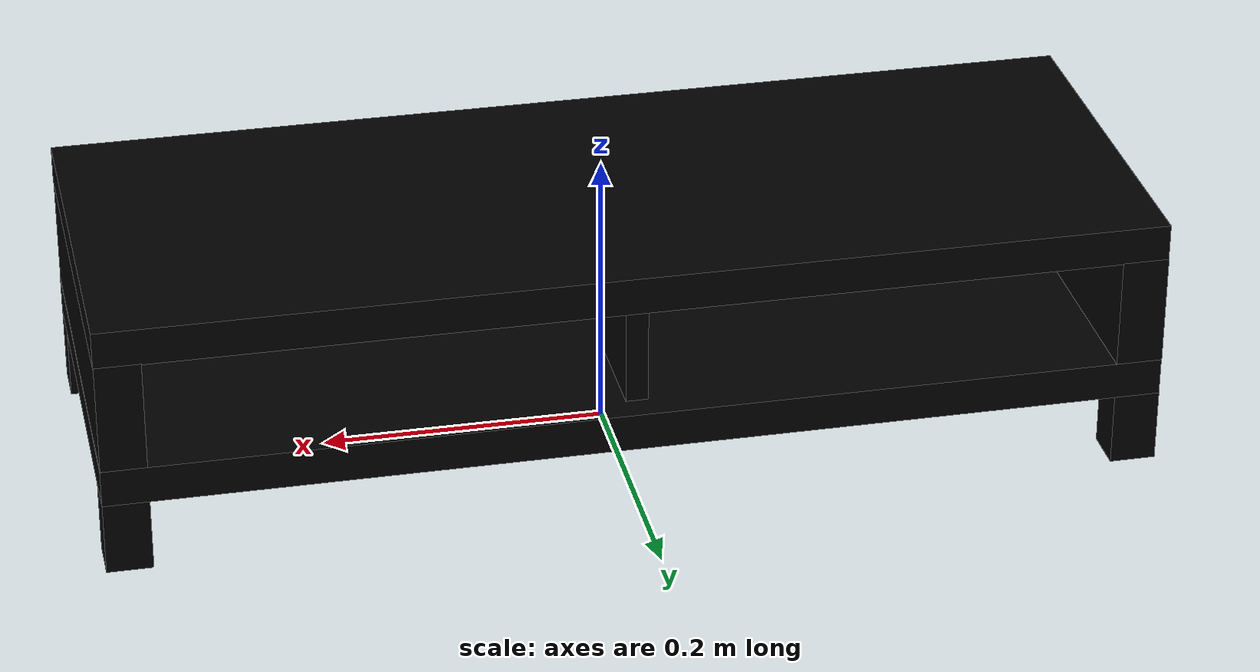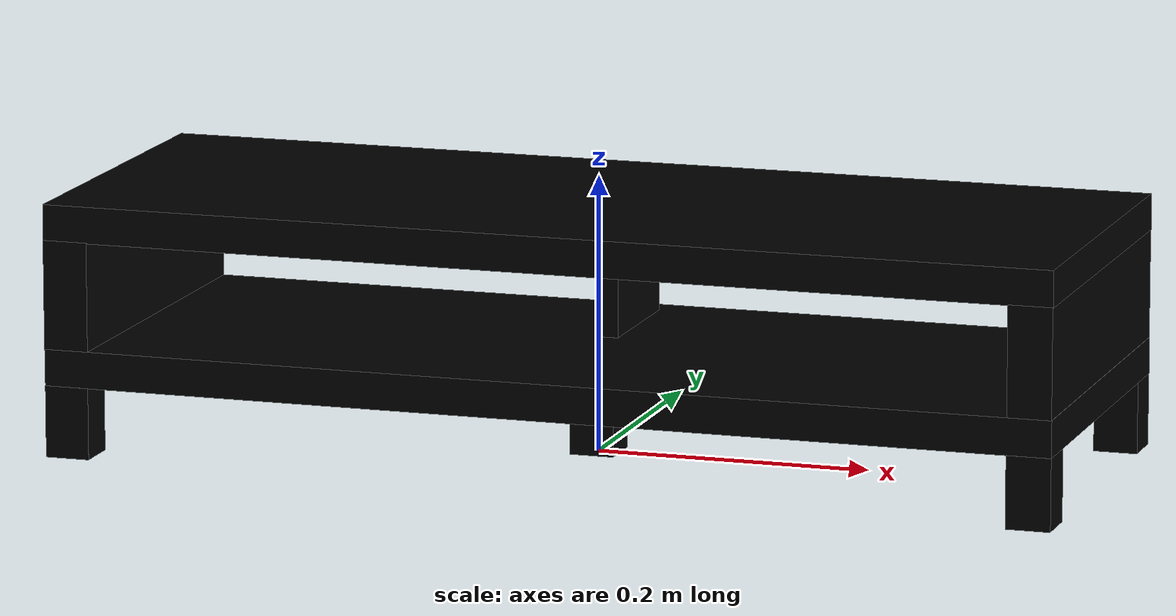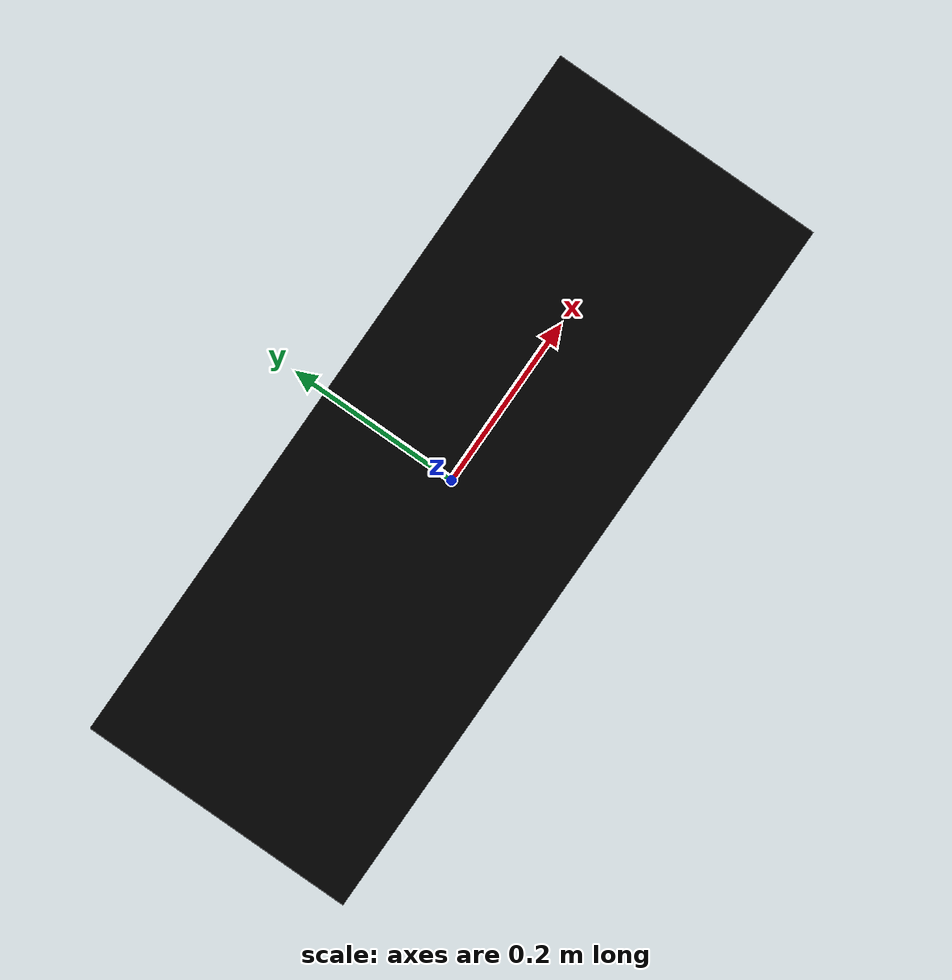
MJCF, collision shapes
<mujoco model="tvunit_lack_0830">
  <custom>
    <numeric data="0.063734 0.203201 0.013249 0 -0 -1 0" name="0_part0_initpos" />
    <numeric data="0.072383 -0.174408 0.013078 0 -1 0 0" name="9_part9_initpos" />
    <numeric data="0.541 0.009119 0.0078 0.706761 0.022102 -0.706761 0.022102" name="8_part8_initpos" />
    <numeric data="0.573934 -0.229309 0.016028 -0.706631 -0.025943 0.706631 -0.025943" name="7_part7_initpos" />
    <numeric data="-0.41802 -0.221782 0.015554 0.035814 -0.706199 0.035814 0.706199" name="6_part6_initpos" />
    <numeric data="-0.387543 0.045523 0.015872 0.70687 -0.70687 -0.018287 0.018287" name="5_part5_initpos" />
    <numeric data="-0.399809 0.305374 0.016183 0.706684 -0.706684 0.024436 -0.024436" name="4_part4_initpos" />
    <numeric data="0.542062 0.292214 0.016183 0.707107 -0.707107 3.4e-05 -3.4e-05" name="3_part3_initpos" />
    <numeric data="-0.391025 0.170627 0.015872 0.707052 -0.707052 -0.008812 0.008812" name="2_part2_initpos" />
    <numeric data="0.536927 0.149925 0.016183 0.706708 -0.706708 -0.023737 0.023737" name="1_part1_initpos" />
  </custom>
  <asset>
    <mesh file="tvunit_lack_0830/0.stl" name="part0" scale="0.0005 0.0005 0.0005" />
    <mesh file="tvunit_lack_0830/9.stl" name="part9" scale="0.0005 0.0005 0.0005" />
    <mesh file="tvunit_lack_0830/8.stl" name="part8" scale="0.0005 0.0005 0.0005" />
    <mesh file="tvunit_lack_0830/7.stl" name="part7" scale="0.0005 0.0005 0.0005" />
    <mesh file="tvunit_lack_0830/6.stl" name="part6" scale="0.0005 0.0005 0.0005" />
    <mesh file="tvunit_lack_0830/5.stl" name="part5" scale="0.0005 0.0005 0.0005" />
    <mesh file="tvunit_lack_0830/4.stl" name="part4" scale="0.0005 0.0005 0.0005" />
    <mesh file="tvunit_lack_0830/3.stl" name="part3" scale="0.0005 0.0005 0.0005" />
    <mesh file="tvunit_lack_0830/2.stl" name="part2" scale="0.0005 0.0005 0.0005" />
    <mesh file="tvunit_lack_0830/1.stl" name="part1" scale="0.0005 0.0005 0.0005" />
  </asset>
  <worldbody><body name="combined_body" pos="0 0 0.06513552474975586" quat="1 0 0 0"><geom conaffinity="0" contype="0" density="0" mesh="part0" name="0_part0_mesh" pos="0.0 0.0 0.0" rgba="0.82 0.71 0.55 1" type="mesh" quat="1 0 0 0" />
      <geom density="50" name="noviz_collision_0_part0_0" pos="0.0 0.0 0.0" quat="1 0 0 0" rgba="0 0 0 0" size="0.36830000000000007 0.13855395 0.013264360000000001" solref="0.001 1" type="box" />
    <site name="0_part0_horizontal_radius_site" pos="0.0 0.0 0.0" quat="1 0 0 0" rgba="0 0 0 0" size="0.0005" />
      <site name="0_part0_top_site" pos="0.0 0.0 0.0" quat="1 0 0 0" rgba="0 0 0 0" size="0.0005" />
      <site name="0_part0_bottom_site" pos="0.0 0.0 0.0" quat="1 0 0 0" rgba="0 0 0 0" size="0.0005" />
      <site name="0_part0_corner_site8" pos="0.0 0.0 0.0" quat="1 0 0 0" rgba="0 0 0 0" size="0.010000000000000002" />
      <site name="0_part0_corner_site7" pos="0.0 0.0 0.0" quat="1 0 0 0" rgba="0 0 0 0" size="0.010000000000000002" />
      <site name="0_part0_corner_site6" pos="0.0 0.0 0.0" quat="1 0 0 0" rgba="0 0 0 0" size="0.010000000000000002" />
      <site name="0_part0_corner_site5" pos="0.0 0.0 0.0" quat="1 0 0 0" rgba="0 0 0 0" size="0.010000000000000002" />
      <site name="0_part0_corner_site4" pos="0.0 0.0 0.0" quat="1 0 0 0" rgba="0 0 0 0" size="0.010000000000000002" />
      <site name="0_part0_corner_site3" pos="0.0 0.0 0.0" quat="1 0 0 0" rgba="0 0 0 0" size="0.010000000000000002" />
      <site name="0_part0_corner_site2" pos="0.0 0.0 0.0" quat="1 0 0 0" rgba="0 0 0 0" size="0.010000000000000002" />
      <site name="0_part0_corner_site1" pos="0.0 0.0 0.0" quat="1 0 0 0" rgba="0 0 0 0" size="0.010000000000000002" />
      <site name="bottom-leg,0,90,180,270,conn_site5" pos="0.0 0.0 0.0" quat="1 0 0 0" rgba="0.9019 0.0980 0.2941 0.3" size="0.005" />
      <site name="bottom-leg,0,90,180,270,conn_site4" pos="0.0 0.0 0.0" quat="1 0 0 0" rgba="0.9019 0.0980 0.2941 0.3" size="0.005" />
      <site name="bottom-leg,0,90,180,270,conn_site3" pos="0.0 0.0 0.0" quat="1 0 0 0" rgba="0.9019 0.0980 0.2941 0.3" size="0.005" />
      <site name="bottom-leg,0,90,180,270,conn_site2" pos="0.0 0.0 0.0" quat="1 0 0 0" rgba="0.9019 0.0980 0.2941 0.3" size="0.005" />
      <site name="bottom-leg,0,90,180,270,conn_site1" pos="0.0 0.0 0.0" quat="1 0 0 0" rgba="0.9019 0.0980 0.2941 0.3" size="0.005" />
      <site name="bottom-side,0,180,conn_site4" pos="0.0 0.0 0.0" quat="1 0 0 0" rgba="0.2352 0.7058 0.2941 0.3" size="0.005" />
      <site name="bottom-side,0,180,conn_site3" pos="0.0 0.0 0.0" quat="1 0 0 0" rgba="0.2352 0.7058 0.2941 0.3" size="0.005" />
      <site name="bottom-center,0,180,conn_site1" pos="0.0 0.0 0.0" quat="1 0 0 0" rgba="1.0 0.8823 0.0980 0.3" size="0.005" />
      <geom conaffinity="0" contype="0" density="0" mesh="part9" name="9_part9_mesh" pos="0.0 0.0 0.10476959915000002" rgba="0.82 0.71 0.55 1" type="mesh" quat="1 0 0 0" />
      <geom density="50" name="noviz_collision_9_part9_0" pos="0.0 0.0 0.10476959915000002" quat="1 0 0 0" rgba="0 0 0 0" size="0.36830315 0.1385358 0.013178590000000002" solref="0.001 1" type="box" />
    <site name="9_part9_horizontal_radius_site" pos="0.0 0.0 0.10476959915000002" quat="1 0 0 0" rgba="0 0 0 0" size="0.0005" />
      <site name="9_part9_top_site" pos="0.0 0.0 0.10476959915000002" quat="1 0 0 0" rgba="0 0 0 0" size="0.0005" />
      <site name="9_part9_bottom_site" pos="0.0 0.0 0.10476959915000002" quat="1 0 0 0" rgba="0 0 0 0" size="0.0005" />
      <site name="9_part9_corner_site8" pos="0.0 0.0 0.10476959915000002" quat="1 0 0 0" rgba="0 0 0 0" size="0.010000000000000002" />
      <site name="9_part9_corner_site7" pos="0.0 0.0 0.10476959915000002" quat="1 0 0 0" rgba="0 0 0 0" size="0.010000000000000002" />
      <site name="9_part9_corner_site6" pos="0.0 0.0 0.10476959915000002" quat="1 0 0 0" rgba="0 0 0 0" size="0.010000000000000002" />
      <site name="9_part9_corner_site5" pos="0.0 0.0 0.10476959915000002" quat="1 0 0 0" rgba="0 0 0 0" size="0.010000000000000002" />
      <site name="9_part9_corner_site4" pos="0.0 0.0 0.10476959915000002" quat="1 0 0 0" rgba="0 0 0 0" size="0.010000000000000002" />
      <site name="9_part9_corner_site3" pos="0.0 0.0 0.10476959915000002" quat="1 0 0 0" rgba="0 0 0 0" size="0.010000000000000002" />
      <site name="9_part9_corner_site2" pos="0.0 0.0 0.10476959915000002" quat="1 0 0 0" rgba="0 0 0 0" size="0.010000000000000002" />
      <site name="9_part9_corner_site1" pos="0.0 0.0 0.10476959915000002" quat="1 0 0 0" rgba="0 0 0 0" size="0.010000000000000002" />
      <site name="top-side,0,180,conn_site2" pos="0.0 0.0 0.10476959915000002" quat="1 0 0 0" rgba="0.2627 0.3882 0.8470 0.3" size="0.005" />
      <site name="top-side,0,180,conn_site1" pos="0.0 0.0 0.10476959915000002" quat="1 0 0 0" rgba="0.2627 0.3882 0.8470 0.3" size="0.005" />
      <site name="top-center,0,180,conn_site1" pos="0.0 0.0 0.10476959915000002" quat="1 0 0 0" rgba="0.9607 0.5098 0.1921 0.3" size="0.005" />
      <geom conaffinity="0" contype="0" density="0" mesh="part8" name="8_part8_mesh" pos="-0.0002363927 0.06955808375 0.052384798700000006" rgba="0.82 0.71 0.55 1" type="mesh" quat="1 0 0 0" />
      <geom density="50" name="noviz_collision_8_part8_0" pos="-0.0002363927 0.06955808375 0.052384798700000006" quat="1 0 0 0" rgba="0 0 0 0" size="0.007835305 0.04887214000000001 0.03913553" solref="0.001 1" type="box" />
    <site name="8_part8_horizontal_radius_site" pos="-0.0002363927 0.06955808375 0.052384798700000006" quat="1 0 0 0" rgba="0 0 0 0" size="0.0005" />
      <site name="8_part8_top_site" pos="-0.0002363927 0.06955808375 0.052384798700000006" quat="1 0 0 0" rgba="0 0 0 0" size="0.0005" />
      <site name="8_part8_bottom_site" pos="-0.0002363927 0.06955808375 0.052384798700000006" quat="1 0 0 0" rgba="0 0 0 0" size="0.0005" />
      <site name="8_part8_corner_site8" pos="-0.0002363927 0.06955808375 0.052384798700000006" quat="1 0 0 0" rgba="0 0 0 0" size="0.010000000000000002" />
      <site name="8_part8_corner_site7" pos="-0.0002363927 0.06955808375 0.052384798700000006" quat="1 0 0 0" rgba="0 0 0 0" size="0.010000000000000002" />
      <site name="8_part8_corner_site6" pos="-0.0002363927 0.06955808375 0.052384798700000006" quat="1 0 0 0" rgba="0 0 0 0" size="0.010000000000000002" />
      <site name="8_part8_corner_site5" pos="-0.0002363927 0.06955808375 0.052384798700000006" quat="1 0 0 0" rgba="0 0 0 0" size="0.010000000000000002" />
      <site name="8_part8_corner_site4" pos="-0.0002363927 0.06955808375 0.052384798700000006" quat="1 0 0 0" rgba="0 0 0 0" size="0.010000000000000002" />
      <site name="8_part8_corner_site3" pos="-0.0002363927 0.06955808375 0.052384798700000006" quat="1 0 0 0" rgba="0 0 0 0" size="0.010000000000000002" />
      <site name="8_part8_corner_site2" pos="-0.0002363927 0.06955808375 0.052384798700000006" quat="1 0 0 0" rgba="0 0 0 0" size="0.010000000000000002" />
      <site name="8_part8_corner_site1" pos="-0.0002363927 0.06955808375 0.052384798700000006" quat="1 0 0 0" rgba="0 0 0 0" size="0.010000000000000002" />
      <site name="center-bottom,0,180,conn_site1" pos="-0.0002363927 0.06955808375 0.052384798700000006" quat="1 0 0 0" rgba="1.0 0.8823 0.0980 0.3" size="0.005" />
      <site name="center-top,0,180,conn_site1" pos="-0.0002363927 0.06955808375 0.052384798700000006" quat="1 0 0 0" rgba="0.9607 0.5098 0.1921 0.3" size="0.005" />
      <geom conaffinity="0" contype="0" density="0" mesh="part7" name="7_part7_mesh" pos="-0.35224241354999997 0.0 0.052384798700000006" rgba="0.82 0.71 0.55 1" type="mesh" quat="1 0 0 0" />
      <geom density="50" name="noviz_collision_7_part7_0" pos="-0.35224241354999997 0.0 0.052384798700000006" quat="1 0 0 0" rgba="0 0 0 0" size="0.016294375 0.13853965 0.039757415000000004" solref="0.001 1" type="box" />
    <site name="7_part7_horizontal_radius_site" pos="-0.35224241354999997 0.0 0.052384798700000006" quat="1 0 0 0" rgba="0 0 0 0" size="0.0005" />
      <site name="7_part7_top_site" pos="-0.35224241354999997 0.0 0.052384798700000006" quat="1 0 0 0" rgba="0 0 0 0" size="0.0005" />
      <site name="7_part7_bottom_site" pos="-0.35224241354999997 0.0 0.052384798700000006" quat="1 0 0 0" rgba="0 0 0 0" size="0.0005" />
      <site name="7_part7_corner_site8" pos="-0.35224241354999997 0.0 0.052384798700000006" quat="1 0 0 0" rgba="0 0 0 0" size="0.010000000000000002" />
      <site name="7_part7_corner_site7" pos="-0.35224241354999997 0.0 0.052384798700000006" quat="1 0 0 0" rgba="0 0 0 0" size="0.010000000000000002" />
      <site name="7_part7_corner_site6" pos="-0.35224241354999997 0.0 0.052384798700000006" quat="1 0 0 0" rgba="0 0 0 0" size="0.010000000000000002" />
      <site name="7_part7_corner_site5" pos="-0.35224241354999997 0.0 0.052384798700000006" quat="1 0 0 0" rgba="0 0 0 0" size="0.010000000000000002" />
      <site name="7_part7_corner_site4" pos="-0.35224241354999997 0.0 0.052384798700000006" quat="1 0 0 0" rgba="0 0 0 0" size="0.010000000000000002" />
      <site name="7_part7_corner_site3" pos="-0.35224241354999997 0.0 0.052384798700000006" quat="1 0 0 0" rgba="0 0 0 0" size="0.010000000000000002" />
      <site name="7_part7_corner_site2" pos="-0.35224241354999997 0.0 0.052384798700000006" quat="1 0 0 0" rgba="0 0 0 0" size="0.010000000000000002" />
      <site name="7_part7_corner_site1" pos="-0.35224241354999997 0.0 0.052384798700000006" quat="1 0 0 0" rgba="0 0 0 0" size="0.010000000000000002" />
      <site name="side-bottom,0,180,conn_site3" pos="-0.35224241354999997 0.0 0.052384798700000006" quat="1 0 0 0" rgba="0.2352 0.7058 0.2941 0.3" size="0.005" />
      <site name="side-top,0,180,conn_site1" pos="-0.35224241354999997 0.0 0.052384798700000006" quat="1 0 0 0" rgba="0.2627 0.3882 0.8470 0.3" size="0.005" />
      <geom conaffinity="0" contype="0" density="0" mesh="part6" name="6_part6_mesh" pos="0.35224239640000005 0.0 0.052384798700000006" rgba="0.82 0.71 0.55 1" type="mesh" quat="1 0 0 0" />
      <geom density="50" name="noviz_collision_6_part6_0" pos="0.35224239640000005 0.0 0.052384798700000006" quat="1 0 0 0" rgba="0 0 0 0" size="0.015820830000000004 0.13853965 0.039757415000000004" solref="0.001 1" type="box" />
    <site name="6_part6_horizontal_radius_site" pos="0.35224239640000005 0.0 0.052384798700000006" quat="1 0 0 0" rgba="0 0 0 0" size="0.0005" />
      <site name="6_part6_top_site" pos="0.35224239640000005 0.0 0.052384798700000006" quat="1 0 0 0" rgba="0 0 0 0" size="0.0005" />
      <site name="6_part6_bottom_site" pos="0.35224239640000005 0.0 0.052384798700000006" quat="1 0 0 0" rgba="0 0 0 0" size="0.0005" />
      <site name="6_part6_corner_site8" pos="0.35224239640000005 0.0 0.052384798700000006" quat="1 0 0 0" rgba="0 0 0 0" size="0.010000000000000002" />
      <site name="6_part6_corner_site7" pos="0.35224239640000005 0.0 0.052384798700000006" quat="1 0 0 0" rgba="0 0 0 0" size="0.010000000000000002" />
      <site name="6_part6_corner_site6" pos="0.35224239640000005 0.0 0.052384798700000006" quat="1 0 0 0" rgba="0 0 0 0" size="0.010000000000000002" />
      <site name="6_part6_corner_site5" pos="0.35224239640000005 0.0 0.052384798700000006" quat="1 0 0 0" rgba="0 0 0 0" size="0.010000000000000002" />
      <site name="6_part6_corner_site4" pos="0.35224239640000005 0.0 0.052384798700000006" quat="1 0 0 0" rgba="0 0 0 0" size="0.010000000000000002" />
      <site name="6_part6_corner_site3" pos="0.35224239640000005 0.0 0.052384798700000006" quat="1 0 0 0" rgba="0 0 0 0" size="0.010000000000000002" />
      <site name="6_part6_corner_site2" pos="0.35224239640000005 0.0 0.052384798700000006" quat="1 0 0 0" rgba="0 0 0 0" size="0.010000000000000002" />
      <site name="6_part6_corner_site1" pos="0.35224239640000005 0.0 0.052384798700000006" quat="1 0 0 0" rgba="0 0 0 0" size="0.010000000000000002" />
      <site name="side-bottom,0,180,conn_site4" pos="0.35224239640000005 0.0 0.052384798700000006" quat="1 0 0 0" rgba="0.2352 0.7058 0.2941 0.3" size="0.005" />
      <site name="side-top,0,180,conn_site2" pos="0.35224239640000005 0.0 0.052384798700000006" quat="1 0 0 0" rgba="0.2627 0.3882 0.8470 0.3" size="0.005" />
      <geom conaffinity="0" contype="0" density="0" mesh="part5" name="5_part5_mesh" pos="0.3522392462000001 0.12247572000000001 -0.039096068350000006" rgba="0.82 0.71 0.55 1" type="mesh" quat="1 0 0 0" />
      <geom density="50" name="noviz_collision_5_part5_0" pos="0.3522392462000001 0.12247572000000001 -0.039096068350000006" quat="1 0 0 0" rgba="0 0 0 0" size="0.015987090000000002 0.01597996 0.02595111" solref="0.001 1" type="box" />
    <site name="5_part5_horizontal_radius_site" pos="0.3522392462000001 0.12247572000000001 -0.039096068350000006" quat="1 0 0 0" rgba="0 0 0 0" size="0.0005" />
      <site name="5_part5_top_site" pos="0.3522392462000001 0.12247572000000001 -0.039096068350000006" quat="1 0 0 0" rgba="0 0 0 0" size="0.0005" />
      <site name="5_part5_bottom_site" pos="0.3522392462000001 0.12247572000000001 -0.039096068350000006" quat="1 0 0 0" rgba="0 0 0 0" size="0.0005" />
      <site name="5_part5_corner_site8" pos="0.3522392462000001 0.12247572000000001 -0.039096068350000006" quat="1 0 0 0" rgba="0 0 0 0" size="0.010000000000000002" />
      <site name="5_part5_corner_site7" pos="0.3522392462000001 0.12247572000000001 -0.039096068350000006" quat="1 0 0 0" rgba="0 0 0 0" size="0.010000000000000002" />
      <site name="5_part5_corner_site6" pos="0.3522392462000001 0.12247572000000001 -0.039096068350000006" quat="1 0 0 0" rgba="0 0 0 0" size="0.010000000000000002" />
      <site name="5_part5_corner_site5" pos="0.3522392462000001 0.12247572000000001 -0.039096068350000006" quat="1 0 0 0" rgba="0 0 0 0" size="0.010000000000000002" />
      <site name="5_part5_corner_site4" pos="0.3522392462000001 0.12247572000000001 -0.039096068350000006" quat="1 0 0 0" rgba="0 0 0 0" size="0.010000000000000002" />
      <site name="5_part5_corner_site3" pos="0.3522392462000001 0.12247572000000001 -0.039096068350000006" quat="1 0 0 0" rgba="0 0 0 0" size="0.010000000000000002" />
      <site name="5_part5_corner_site2" pos="0.3522392462000001 0.12247572000000001 -0.039096068350000006" quat="1 0 0 0" rgba="0 0 0 0" size="0.010000000000000002" />
      <site name="5_part5_corner_site1" pos="0.3522392462000001 0.12247572000000001 -0.039096068350000006" quat="1 0 0 0" rgba="0 0 0 0" size="0.010000000000000002" />
      <site name="leg-bottom,0,90,180,270,conn_site1" pos="0.3522392462000001 0.12247572000000001 -0.039096068350000006" quat="1 0 0 0" rgba="0.9019 0.0980 0.2941 0.3" size="0.005" />
      <geom conaffinity="0" contype="0" density="0" mesh="part4" name="4_part4_mesh" pos="0.3522392462000001 -0.12248202155000001 -0.039096068350000006" rgba="0.82 0.71 0.55 1" type="mesh" quat="1 0 0 0" />
      <geom density="50" name="noviz_collision_4_part4_0" pos="0.3522392462000001 -0.12248202155000001 -0.039096068350000006" quat="1 0 0 0" rgba="0 0 0 0" size="0.015987090000000002 0.016135275 0.02595111" solref="0.001 1" type="box" />
    <site name="4_part4_horizontal_radius_site" pos="0.3522392462000001 -0.12248202155000001 -0.039096068350000006" quat="1 0 0 0" rgba="0 0 0 0" size="0.0005" />
      <site name="4_part4_top_site" pos="0.3522392462000001 -0.12248202155000001 -0.039096068350000006" quat="1 0 0 0" rgba="0 0 0 0" size="0.0005" />
      <site name="4_part4_bottom_site" pos="0.3522392462000001 -0.12248202155000001 -0.039096068350000006" quat="1 0 0 0" rgba="0 0 0 0" size="0.0005" />
      <site name="4_part4_corner_site8" pos="0.3522392462000001 -0.12248202155000001 -0.039096068350000006" quat="1 0 0 0" rgba="0 0 0 0" size="0.010000000000000002" />
      <site name="4_part4_corner_site7" pos="0.3522392462000001 -0.12248202155000001 -0.039096068350000006" quat="1 0 0 0" rgba="0 0 0 0" size="0.010000000000000002" />
      <site name="4_part4_corner_site6" pos="0.3522392462000001 -0.12248202155000001 -0.039096068350000006" quat="1 0 0 0" rgba="0 0 0 0" size="0.010000000000000002" />
      <site name="4_part4_corner_site5" pos="0.3522392462000001 -0.12248202155000001 -0.039096068350000006" quat="1 0 0 0" rgba="0 0 0 0" size="0.010000000000000002" />
      <site name="4_part4_corner_site4" pos="0.3522392462000001 -0.12248202155000001 -0.039096068350000006" quat="1 0 0 0" rgba="0 0 0 0" size="0.010000000000000002" />
      <site name="4_part4_corner_site3" pos="0.3522392462000001 -0.12248202155000001 -0.039096068350000006" quat="1 0 0 0" rgba="0 0 0 0" size="0.010000000000000002" />
      <site name="4_part4_corner_site2" pos="0.3522392462000001 -0.12248202155000001 -0.039096068350000006" quat="1 0 0 0" rgba="0 0 0 0" size="0.010000000000000002" />
      <site name="4_part4_corner_site1" pos="0.3522392462000001 -0.12248202155000001 -0.039096068350000006" quat="1 0 0 0" rgba="0 0 0 0" size="0.010000000000000002" />
      <site name="leg-bottom,0,90,180,270,conn_site2" pos="0.3522392462000001 -0.12248202155000001 -0.039096068350000006" quat="1 0 0 0" rgba="0.9019 0.0980 0.2941 0.3" size="0.005" />
      <geom conaffinity="0" contype="0" density="0" mesh="part3" name="3_part3_mesh" pos="-1.3600000000000001e-08 -0.0010706179 -0.039096068350000006" rgba="0.82 0.71 0.55 1" type="mesh" quat="1 0 0 0" />
      <geom density="50" name="noviz_collision_3_part3_0" pos="-1.3600000000000001e-08 -0.0010706179 -0.039096068350000006" quat="1 0 0 0" rgba="0 0 0 0" size="0.016134435 0.016135255 0.02595111" solref="0.001 1" type="box" />
    <site name="3_part3_horizontal_radius_site" pos="-1.3600000000000001e-08 -0.0010706179 -0.039096068350000006" quat="1 0 0 0" rgba="0 0 0 0" size="0.0005" />
      <site name="3_part3_top_site" pos="-1.3600000000000001e-08 -0.0010706179 -0.039096068350000006" quat="1 0 0 0" rgba="0 0 0 0" size="0.0005" />
      <site name="3_part3_bottom_site" pos="-1.3600000000000001e-08 -0.0010706179 -0.039096068350000006" quat="1 0 0 0" rgba="0 0 0 0" size="0.0005" />
      <site name="3_part3_corner_site8" pos="-1.3600000000000001e-08 -0.0010706179 -0.039096068350000006" quat="1 0 0 0" rgba="0 0 0 0" size="0.010000000000000002" />
      <site name="3_part3_corner_site7" pos="-1.3600000000000001e-08 -0.0010706179 -0.039096068350000006" quat="1 0 0 0" rgba="0 0 0 0" size="0.010000000000000002" />
      <site name="3_part3_corner_site6" pos="-1.3600000000000001e-08 -0.0010706179 -0.039096068350000006" quat="1 0 0 0" rgba="0 0 0 0" size="0.010000000000000002" />
      <site name="3_part3_corner_site5" pos="-1.3600000000000001e-08 -0.0010706179 -0.039096068350000006" quat="1 0 0 0" rgba="0 0 0 0" size="0.010000000000000002" />
      <site name="3_part3_corner_site4" pos="-1.3600000000000001e-08 -0.0010706179 -0.039096068350000006" quat="1 0 0 0" rgba="0 0 0 0" size="0.010000000000000002" />
      <site name="3_part3_corner_site3" pos="-1.3600000000000001e-08 -0.0010706179 -0.039096068350000006" quat="1 0 0 0" rgba="0 0 0 0" size="0.010000000000000002" />
      <site name="3_part3_corner_site2" pos="-1.3600000000000001e-08 -0.0010706179 -0.039096068350000006" quat="1 0 0 0" rgba="0 0 0 0" size="0.010000000000000002" />
      <site name="3_part3_corner_site1" pos="-1.3600000000000001e-08 -0.0010706179 -0.039096068350000006" quat="1 0 0 0" rgba="0 0 0 0" size="0.010000000000000002" />
      <site name="leg-bottom,0,90,180,270,conn_site3" pos="-1.3600000000000001e-08 -0.0010706179 -0.039096068350000006" quat="1 0 0 0" rgba="0.9019 0.0980 0.2941 0.3" size="0.005" />
      <geom conaffinity="0" contype="0" density="0" mesh="part2" name="2_part2_mesh" pos="-0.35223925955 0.12248201835000001 -0.039096068350000006" rgba="0.82 0.71 0.55 1" type="mesh" quat="1 0 0 0" />
      <geom density="50" name="noviz_collision_2_part2_0" pos="-0.35223925955 0.12248201835000001 -0.039096068350000006" quat="1 0 0 0" rgba="0 0 0 0" size="0.01613443 0.015979950000000003 0.02595111" solref="0.001 1" type="box" />
    <site name="2_part2_horizontal_radius_site" pos="-0.35223925955 0.12248201835000001 -0.039096068350000006" quat="1 0 0 0" rgba="0 0 0 0" size="0.0005" />
      <site name="2_part2_top_site" pos="-0.35223925955 0.12248201835000001 -0.039096068350000006" quat="1 0 0 0" rgba="0 0 0 0" size="0.0005" />
      <site name="2_part2_bottom_site" pos="-0.35223925955 0.12248201835000001 -0.039096068350000006" quat="1 0 0 0" rgba="0 0 0 0" size="0.0005" />
      <site name="2_part2_corner_site8" pos="-0.35223925955 0.12248201835000001 -0.039096068350000006" quat="1 0 0 0" rgba="0 0 0 0" size="0.010000000000000002" />
      <site name="2_part2_corner_site7" pos="-0.35223925955 0.12248201835000001 -0.039096068350000006" quat="1 0 0 0" rgba="0 0 0 0" size="0.010000000000000002" />
      <site name="2_part2_corner_site6" pos="-0.35223925955 0.12248201835000001 -0.039096068350000006" quat="1 0 0 0" rgba="0 0 0 0" size="0.010000000000000002" />
      <site name="2_part2_corner_site5" pos="-0.35223925955 0.12248201835000001 -0.039096068350000006" quat="1 0 0 0" rgba="0 0 0 0" size="0.010000000000000002" />
      <site name="2_part2_corner_site4" pos="-0.35223925955 0.12248201835000001 -0.039096068350000006" quat="1 0 0 0" rgba="0 0 0 0" size="0.010000000000000002" />
      <site name="2_part2_corner_site3" pos="-0.35223925955 0.12248201835000001 -0.039096068350000006" quat="1 0 0 0" rgba="0 0 0 0" size="0.010000000000000002" />
      <site name="2_part2_corner_site2" pos="-0.35223925955 0.12248201835000001 -0.039096068350000006" quat="1 0 0 0" rgba="0 0 0 0" size="0.010000000000000002" />
      <site name="2_part2_corner_site1" pos="-0.35223925955 0.12248201835000001 -0.039096068350000006" quat="1 0 0 0" rgba="0 0 0 0" size="0.010000000000000002" />
      <site name="leg-bottom,0,90,180,270,conn_site4" pos="-0.35223925955 0.12248201835000001 -0.039096068350000006" quat="1 0 0 0" rgba="0.9019 0.0980 0.2941 0.3" size="0.005" />
      <geom conaffinity="0" contype="0" density="0" mesh="part1" name="1_part1_mesh" pos="-0.35223925955 -0.12248202155000001 -0.039096068350000006" rgba="0.82 0.71 0.55 1" type="mesh" quat="1 0 0 0" />
      <geom density="50" name="noviz_collision_1_part1_0" pos="-0.35223925955 -0.12248202155000001 -0.039096068350000006" quat="1 0 0 0" rgba="0 0 0 0" size="0.01613443 0.016135275 0.02595111" solref="0.001 1" type="box" />
    <site name="1_part1_horizontal_radius_site" pos="-0.35223925955 -0.12248202155000001 -0.039096068350000006" quat="1 0 0 0" rgba="0 0 0 0" size="0.0005" />
      <site name="1_part1_top_site" pos="-0.35223925955 -0.12248202155000001 -0.039096068350000006" quat="1 0 0 0" rgba="0 0 0 0" size="0.0005" />
      <site name="1_part1_bottom_site" pos="-0.35223925955 -0.12248202155000001 -0.039096068350000006" quat="1 0 0 0" rgba="0 0 0 0" size="0.0005" />
      <site name="1_part1_corner_site8" pos="-0.35223925955 -0.12248202155000001 -0.039096068350000006" quat="1 0 0 0" rgba="0 0 0 0" size="0.010000000000000002" />
      <site name="1_part1_corner_site7" pos="-0.35223925955 -0.12248202155000001 -0.039096068350000006" quat="1 0 0 0" rgba="0 0 0 0" size="0.010000000000000002" />
      <site name="1_part1_corner_site6" pos="-0.35223925955 -0.12248202155000001 -0.039096068350000006" quat="1 0 0 0" rgba="0 0 0 0" size="0.010000000000000002" />
      <site name="1_part1_corner_site5" pos="-0.35223925955 -0.12248202155000001 -0.039096068350000006" quat="1 0 0 0" rgba="0 0 0 0" size="0.010000000000000002" />
      <site name="1_part1_corner_site4" pos="-0.35223925955 -0.12248202155000001 -0.039096068350000006" quat="1 0 0 0" rgba="0 0 0 0" size="0.010000000000000002" />
      <site name="1_part1_corner_site3" pos="-0.35223925955 -0.12248202155000001 -0.039096068350000006" quat="1 0 0 0" rgba="0 0 0 0" size="0.010000000000000002" />
      <site name="1_part1_corner_site2" pos="-0.35223925955 -0.12248202155000001 -0.039096068350000006" quat="1 0 0 0" rgba="0 0 0 0" size="0.010000000000000002" />
      <site name="1_part1_corner_site1" pos="-0.35223925955 -0.12248202155000001 -0.039096068350000006" quat="1 0 0 0" rgba="0 0 0 0" size="0.010000000000000002" />
      <site name="leg-bottom,0,90,180,270,conn_site5" pos="-0.35223925955 -0.12248202155000001 -0.039096068350000006" quat="1 0 0 0" rgba="0.9019 0.0980 0.2941 0.3" size="0.005" />
      </body></worldbody><actuator />
  <sensor />
  <contact />
  <default />
</mujoco>
